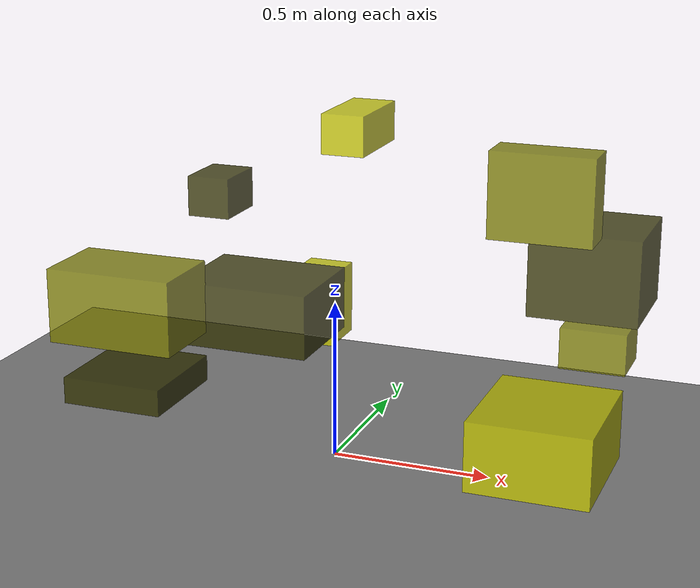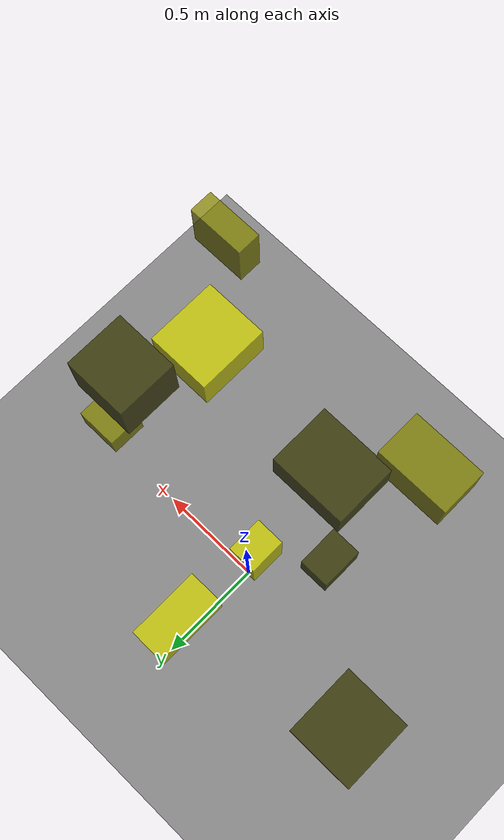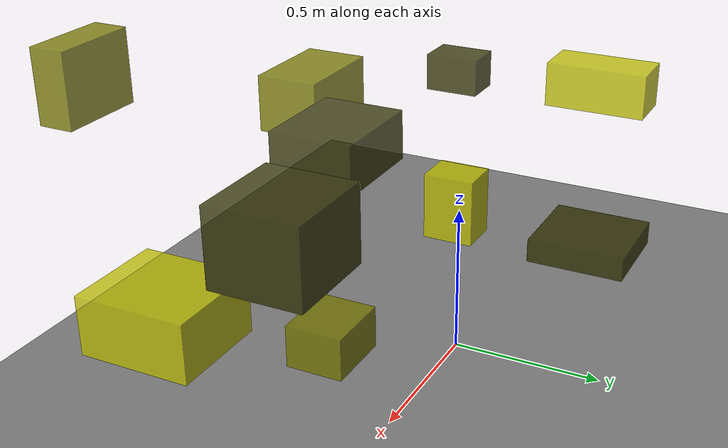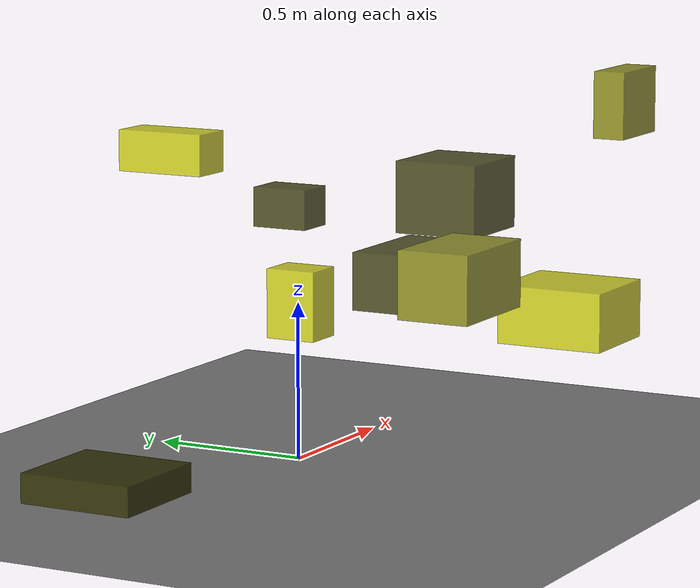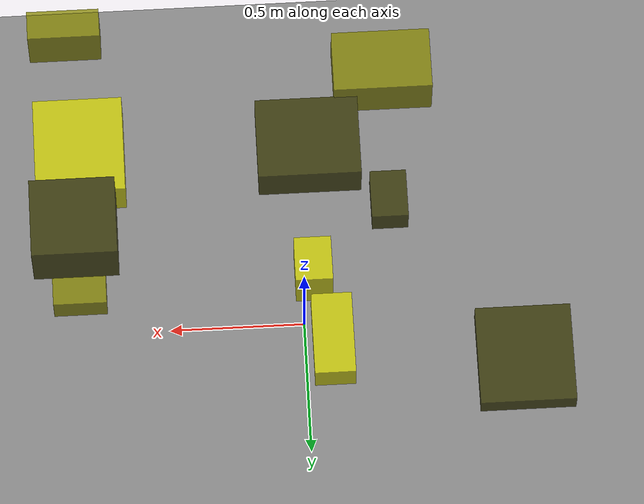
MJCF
<?xml version="1.0"?>
<mujoco model="obstacle_scene">
  <compiler angle="radian" coordinate="local"/>
  <option timestep="0.001" gravity="0 0 -9.81"/>

  <asset>
    <material name="obstacle_mat" rgba="0.8 0.8 0.0 0.8"/>
    <material name="ground_mat" rgba="0.5 0.5 0.5 1"/>
  </asset>

  <worldbody>
    <!-- Ground plane -->
    <geom name="ground" type="plane" size="3 3 0.1" material="ground_mat"/>

    <!-- Obstacles -->
    <body name="obstacle_0" pos="-0.037413 -0.462879 0.630023">
      <geom name="obs_0" type="box" size="0.186615 0.149564 0.088732" rgba="0.2 0.2 0.0 0.8"/>
    </body>
    <body name="obstacle_1" pos="0.822032 -0.744837 1.089682">
      <geom name="obs_1" type="box" size="0.128054 0.051742 0.107428" rgba="0.5 0.5 0.0 0.8"/>
    </body>
    <body name="obstacle_2" pos="0.801568 -0.567481 0.392342">
      <geom name="obs_2" type="box" size="0.164071 0.181183 0.095847" rgba="0.8 0.8 0.0 0.8"/>
    </body>
    <body name="obstacle_3" pos="-0.809161 0.199802 0.071771">
      <geom name="obs_3" type="box" size="0.176548 0.186367 0.045531" rgba="0.2 0.2 0.0 0.8"/>
    </body>
    <body name="obstacle_4" pos="-0.319959 -0.721629 0.686612">
      <geom name="obs_4" type="box" size="0.178302 0.112322 0.102415" rgba="0.5 0.5 0.0 0.8"/>
    </body>
    <body name="obstacle_5" pos="-0.080082 0.412986 0.964517">
      <geom name="obs_5" type="box" size="0.071557 0.148006 0.065257" rgba="0.8 0.8 0.0 0.8"/>
    </body>
    <body name="obstacle_6" pos="0.823131 -0.139333 0.746967">
      <geom name="obs_6" type="box" size="0.153714 0.143843 0.120342" rgba="0.2 0.2 0.0 0.8"/>
    </body>
    <body name="obstacle_7" pos="0.818761 -0.008165 0.476549">
      <geom name="obs_7" type="box" size="0.096554 0.081327 0.060870" rgba="0.5 0.5 0.0 0.8"/>
    </body>
    <body name="obstacle_8" pos="-0.033896 -0.026487 0.510312">
      <geom name="obs_8" type="box" size="0.067049 0.082429 0.109387" rgba="0.8 0.8 0.0 0.8"/>
    </body>
    <body name="obstacle_9" pos="-0.310774 -0.145156 0.859605">
      <geom name="obs_9" type="box" size="0.064429 0.087289 0.059772" rgba="0.2 0.2 0.0 0.8"/>
    </body>
  </worldbody>
</mujoco>
